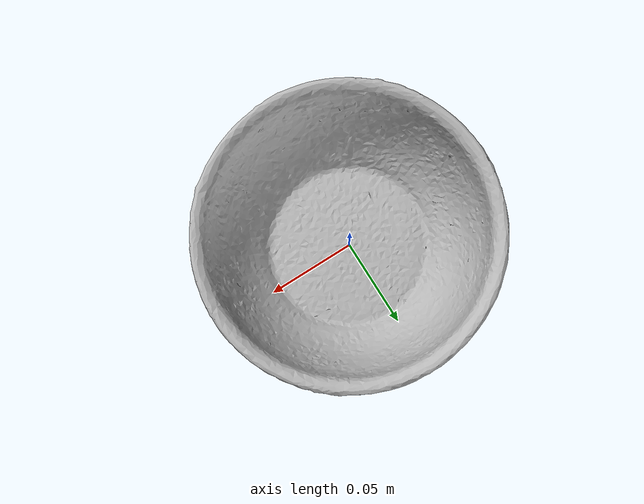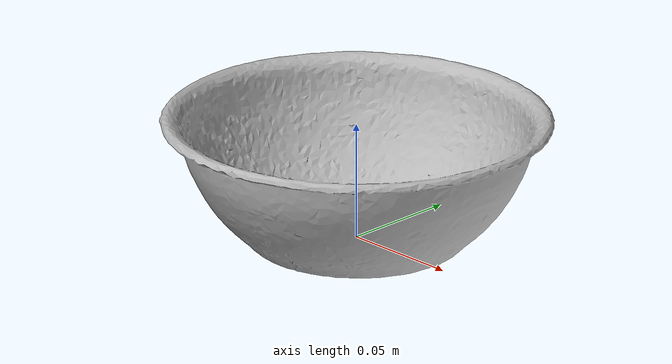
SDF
<?xml version="1.0" ?>
<sdf version='1.8'>
  <model name='ycb_024_bowl'>
    <link name='body'>
      <inertial>
        <mass>0.147</mass>
        <pose>0.000836515237 -0.00208842103 0.027352348 0 0 0</pose>
        <inertia>
          <ixx>0.000346042290575</ixx>
          <ixy>5.49631336913e-06</ixy>
          <ixz>-4.98452538725e-09</ixz>
          <iyy>0.000338849645298</iyy>
          <iyz>5.13542565829e-06</iyz>
          <izz>0.000577704973684</izz>
        </inertia>
      </inertial>
      <visual name='ycb_024_bowl_visual'>
        <pose>0.015109 0.04364 0.00058 0 0 0</pose>
        <geometry>
          <mesh>
            <uri>model://ycb_024_bowl/meshes/textured.dae</uri>
          </mesh>
        </geometry>
      </visual>
      <collision name='ycb_024_bowl_collision'>
        <pose>0.015109 0.04364 0.00058 0 0 0</pose>
        <geometry>
          <mesh>
            <uri>model://ycb_024_bowl/meshes/nontextured.stl</uri>
          </mesh>
        </geometry>
        <max_contacts>10</max_contacts>
        <surface>
          <contact>
            <ode>
              <kp>1e15</kp>
              <kd>1e13</kd>
            </ode>
          </contact>
        </surface>
      </collision>
    </link>
  </model>
</sdf>
